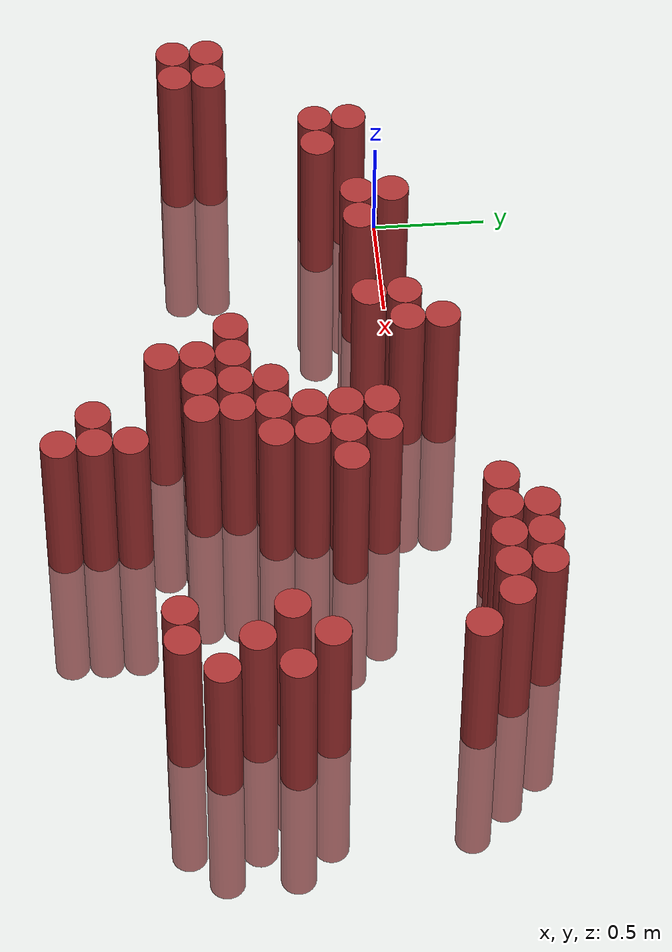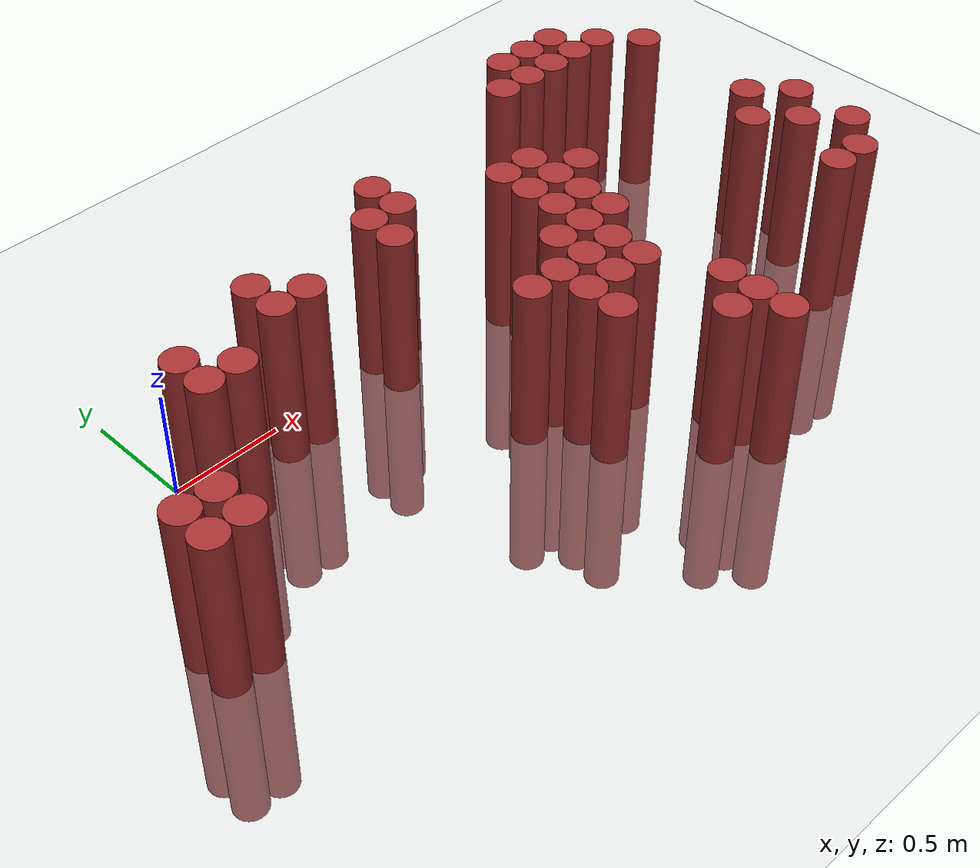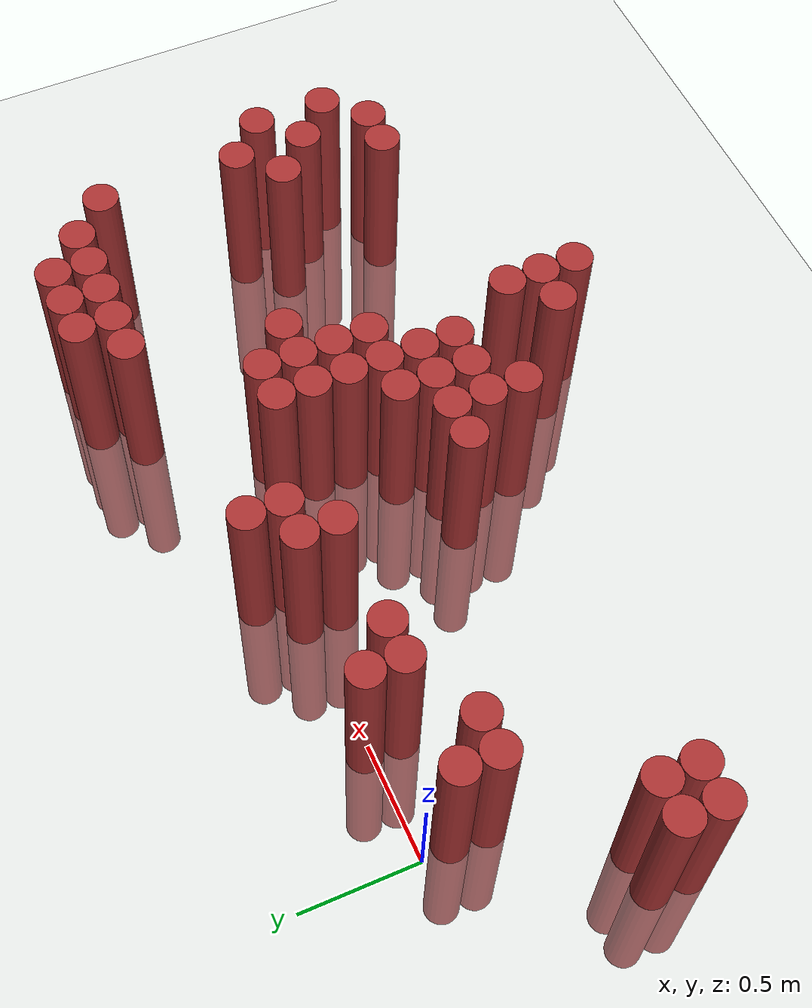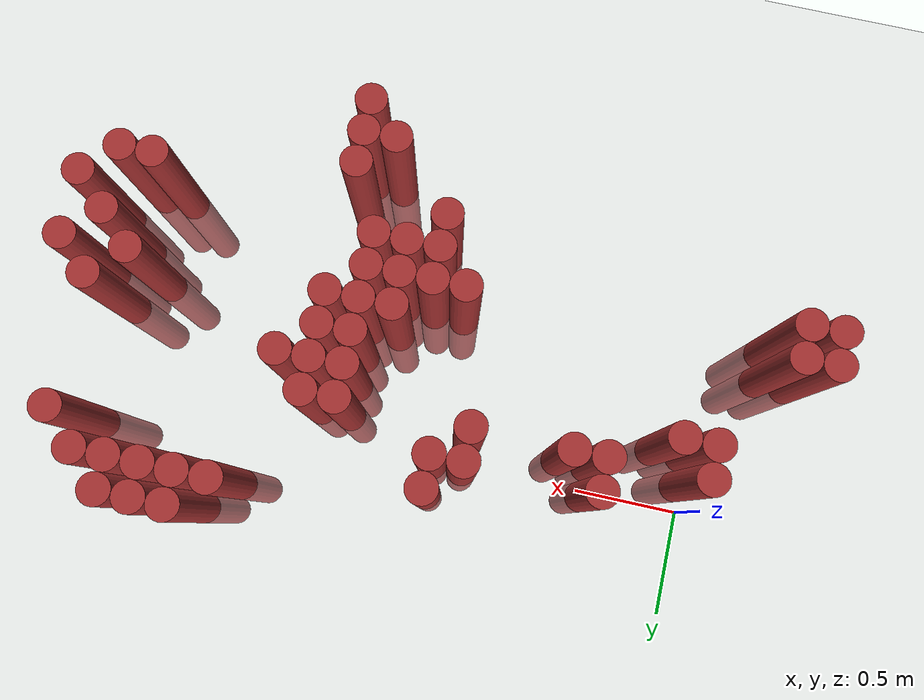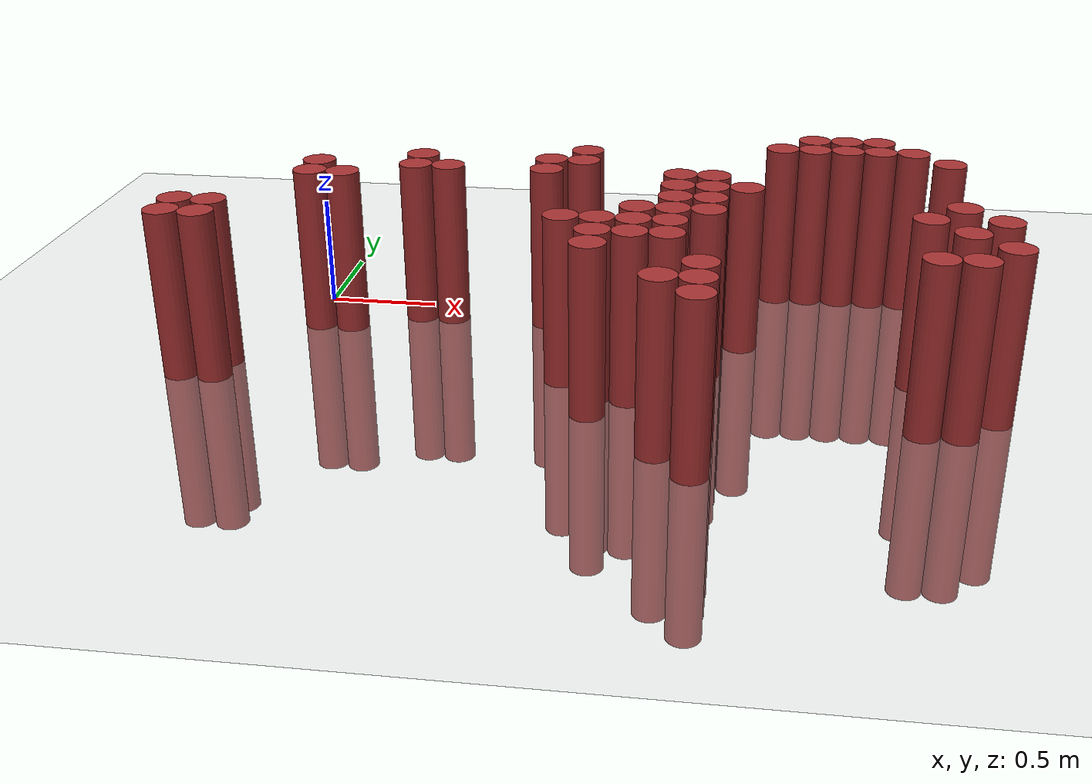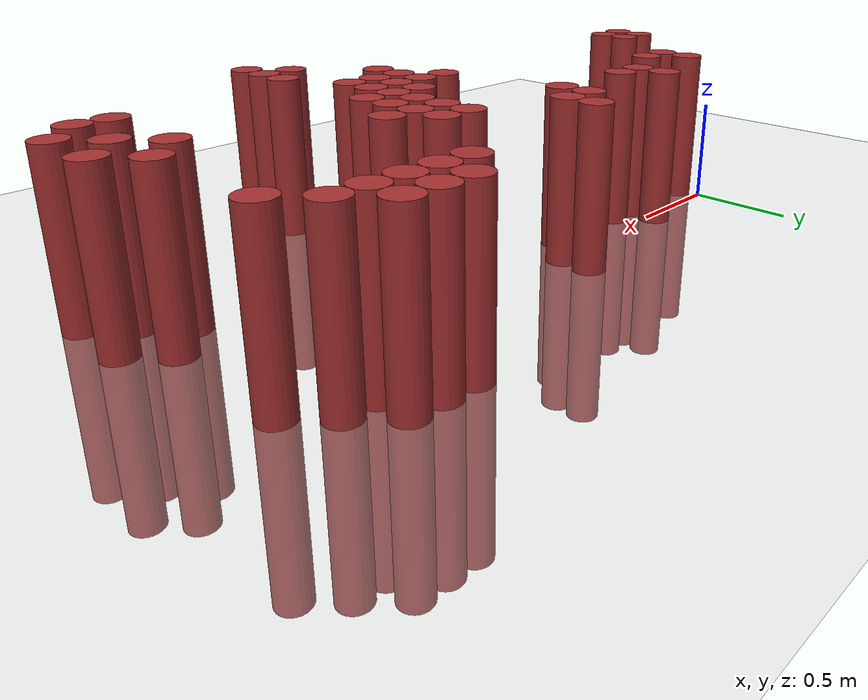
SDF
<sdf version="1.6">
 <world name="default">
  <model name="ground_plane">
   <static>1</static>
   <link name="link">
    <collision name="collision">
     <geometry><plane><normal>0 0 1</normal><size>100 100</size></plane></geometry>
     <surface><friction><ode><mu>100</mu><mu2>50</mu2></ode></friction></surface>
    </collision>
    <visual name="visual">
     <cast_shadows>0</cast_shadows>
     <geometry><plane><normal>0 0 1</normal><size>100 100</size></plane></geometry>
     <material>
      <script><uri>file://media/materials/scripts/gazebo.material</uri><name>Gazebo/Grey</name></script>
     </material>
    </visual>
   </link>
  </model>
  <model name="unit_cylinder_351">
   <static>1</static>
   <pose>-0.425000 -0.875000 0.000000 0.000000 0.000000 0.000000</pose>
   <link name="link">
    <inertial>
     <mass>1</mass>
     <inertia><ixx>0.145833</ixx><ixy>0</ixy><ixz>0</ixz><iyy>0.145833</iyy><iyz>0</iyz><izz>0.125</izz></inertia>
    </inertial>
    <collision name="collision">
     <geometry><cylinder><radius>0.075000</radius><length>1.5</length></cylinder></geometry>
    </collision>
    <visual name="visual">
     <geometry><cylinder><radius>0.075000</radius><length>1.5</length></cylinder></geometry>
     <material>
      <ambient>0.648000 0.192000 0.192000 1</ambient>
      <diffuse>0.648000 0.192000 0.192000 1</diffuse>
     </material>
     <material>
      <script><name>Gazebo/Grey</name><uri>file://media/materials/scripts/gazebo.material</uri></script>
     </material>
    </visual>
   </link>
  </model>
  <model name="unit_cylinder_352">
   <static>1</static>
   <pose>-0.425000 -0.725000 0.000000 0.000000 0.000000 0.000000</pose>
   <link name="link">
    <inertial>
     <mass>1</mass>
     <inertia><ixx>0.145833</ixx><ixy>0</ixy><ixz>0</ixz><iyy>0.145833</iyy><iyz>0</iyz><izz>0.125</izz></inertia>
    </inertial>
    <collision name="collision">
     <geometry><cylinder><radius>0.075000</radius><length>1.5</length></cylinder></geometry>
    </collision>
    <visual name="visual">
     <geometry><cylinder><radius>0.075000</radius><length>1.5</length></cylinder></geometry>
     <material>
      <ambient>0.648000 0.192000 0.192000 1</ambient>
      <diffuse>0.648000 0.192000 0.192000 1</diffuse>
     </material>
     <material>
      <script><name>Gazebo/Grey</name><uri>file://media/materials/scripts/gazebo.material</uri></script>
     </material>
    </visual>
   </link>
  </model>
  <model name="unit_cylinder_356">
   <static>1</static>
   <pose>-0.275000 -0.875000 0.000000 0.000000 0.000000 0.000000</pose>
   <link name="link">
    <inertial>
     <mass>1</mass>
     <inertia><ixx>0.145833</ixx><ixy>0</ixy><ixz>0</ixz><iyy>0.145833</iyy><iyz>0</iyz><izz>0.125</izz></inertia>
    </inertial>
    <collision name="collision">
     <geometry><cylinder><radius>0.075000</radius><length>1.5</length></cylinder></geometry>
    </collision>
    <visual name="visual">
     <geometry><cylinder><radius>0.075000</radius><length>1.5</length></cylinder></geometry>
     <material>
      <ambient>0.648000 0.192000 0.192000 1</ambient>
      <diffuse>0.648000 0.192000 0.192000 1</diffuse>
     </material>
     <material>
      <script><name>Gazebo/Grey</name><uri>file://media/materials/scripts/gazebo.material</uri></script>
     </material>
    </visual>
   </link>
  </model>
  <model name="unit_cylinder_357">
   <static>1</static>
   <pose>-0.275000 -0.725000 0.000000 0.000000 0.000000 0.000000</pose>
   <link name="link">
    <inertial>
     <mass>1</mass>
     <inertia><ixx>0.145833</ixx><ixy>0</ixy><ixz>0</ixz><iyy>0.145833</iyy><iyz>0</iyz><izz>0.125</izz></inertia>
    </inertial>
    <collision name="collision">
     <geometry><cylinder><radius>0.075000</radius><length>1.5</length></cylinder></geometry>
    </collision>
    <visual name="visual">
     <geometry><cylinder><radius>0.075000</radius><length>1.5</length></cylinder></geometry>
     <material>
      <ambient>0.648000 0.192000 0.192000 1</ambient>
      <diffuse>0.648000 0.192000 0.192000 1</diffuse>
     </material>
     <material>
      <script><name>Gazebo/Grey</name><uri>file://media/materials/scripts/gazebo.material</uri></script>
     </material>
    </visual>
   </link>
  </model>
  <model name="unit_cylinder_365">
   <static>1</static>
   <pose>0.025000 -0.275000 0.000000 0.000000 0.000000 0.000000</pose>
   <link name="link">
    <inertial>
     <mass>1</mass>
     <inertia><ixx>0.145833</ixx><ixy>0</ixy><ixz>0</ixz><iyy>0.145833</iyy><iyz>0</iyz><izz>0.125</izz></inertia>
    </inertial>
    <collision name="collision">
     <geometry><cylinder><radius>0.075000</radius><length>1.5</length></cylinder></geometry>
    </collision>
    <visual name="visual">
     <geometry><cylinder><radius>0.075000</radius><length>1.5</length></cylinder></geometry>
     <material>
      <ambient>0.648000 0.192000 0.192000 1</ambient>
      <diffuse>0.648000 0.192000 0.192000 1</diffuse>
     </material>
     <material>
      <script><name>Gazebo/Grey</name><uri>file://media/materials/scripts/gazebo.material</uri></script>
     </material>
    </visual>
   </link>
  </model>
  <model name="unit_cylinder_366">
   <static>1</static>
   <pose>0.025000 -0.125000 0.000000 0.000000 0.000000 0.000000</pose>
   <link name="link">
    <inertial>
     <mass>1</mass>
     <inertia><ixx>0.145833</ixx><ixy>0</ixy><ixz>0</ixz><iyy>0.145833</iyy><iyz>0</iyz><izz>0.125</izz></inertia>
    </inertial>
    <collision name="collision">
     <geometry><cylinder><radius>0.075000</radius><length>1.5</length></cylinder></geometry>
    </collision>
    <visual name="visual">
     <geometry><cylinder><radius>0.075000</radius><length>1.5</length></cylinder></geometry>
     <material>
      <ambient>0.648000 0.192000 0.192000 1</ambient>
      <diffuse>0.648000 0.192000 0.192000 1</diffuse>
     </material>
     <material>
      <script><name>Gazebo/Grey</name><uri>file://media/materials/scripts/gazebo.material</uri></script>
     </material>
    </visual>
   </link>
  </model>
  <model name="unit_cylinder_372">
   <static>1</static>
   <pose>0.175000 -0.275000 0.000000 0.000000 0.000000 0.000000</pose>
   <link name="link">
    <inertial>
     <mass>1</mass>
     <inertia><ixx>0.145833</ixx><ixy>0</ixy><ixz>0</ixz><iyy>0.145833</iyy><iyz>0</iyz><izz>0.125</izz></inertia>
    </inertial>
    <collision name="collision">
     <geometry><cylinder><radius>0.075000</radius><length>1.5</length></cylinder></geometry>
    </collision>
    <visual name="visual">
     <geometry><cylinder><radius>0.075000</radius><length>1.5</length></cylinder></geometry>
     <material>
      <ambient>0.648000 0.192000 0.192000 1</ambient>
      <diffuse>0.648000 0.192000 0.192000 1</diffuse>
     </material>
     <material>
      <script><name>Gazebo/Grey</name><uri>file://media/materials/scripts/gazebo.material</uri></script>
     </material>
    </visual>
   </link>
  </model>
  <model name="unit_cylinder_383">
   <static>1</static>
   <pose>0.475000 -0.125000 0.000000 0.000000 0.000000 0.000000</pose>
   <link name="link">
    <inertial>
     <mass>1</mass>
     <inertia><ixx>0.145833</ixx><ixy>0</ixy><ixz>0</ixz><iyy>0.145833</iyy><iyz>0</iyz><izz>0.125</izz></inertia>
    </inertial>
    <collision name="collision">
     <geometry><cylinder><radius>0.075000</radius><length>1.5</length></cylinder></geometry>
    </collision>
    <visual name="visual">
     <geometry><cylinder><radius>0.075000</radius><length>1.5</length></cylinder></geometry>
     <material>
      <ambient>0.648000 0.192000 0.192000 1</ambient>
      <diffuse>0.648000 0.192000 0.192000 1</diffuse>
     </material>
     <material>
      <script><name>Gazebo/Grey</name><uri>file://media/materials/scripts/gazebo.material</uri></script>
     </material>
    </visual>
   </link>
  </model>
  <model name="unit_cylinder_384">
   <static>1</static>
   <pose>0.475000 0.025000 0.000000 0.000000 0.000000 0.000000</pose>
   <link name="link">
    <inertial>
     <mass>1</mass>
     <inertia><ixx>0.145833</ixx><ixy>0</ixy><ixz>0</ixz><iyy>0.145833</iyy><iyz>0</iyz><izz>0.125</izz></inertia>
    </inertial>
    <collision name="collision">
     <geometry><cylinder><radius>0.075000</radius><length>1.5</length></cylinder></geometry>
    </collision>
    <visual name="visual">
     <geometry><cylinder><radius>0.075000</radius><length>1.5</length></cylinder></geometry>
     <material>
      <ambient>0.648000 0.192000 0.192000 1</ambient>
      <diffuse>0.648000 0.192000 0.192000 1</diffuse>
     </material>
     <material>
      <script><name>Gazebo/Grey</name><uri>file://media/materials/scripts/gazebo.material</uri></script>
     </material>
    </visual>
   </link>
  </model>
  <model name="unit_cylinder_390">
   <static>1</static>
   <pose>0.625000 -0.125000 0.000000 0.000000 0.000000 0.000000</pose>
   <link name="link">
    <inertial>
     <mass>1</mass>
     <inertia><ixx>0.145833</ixx><ixy>0</ixy><ixz>0</ixz><iyy>0.145833</iyy><iyz>0</iyz><izz>0.125</izz></inertia>
    </inertial>
    <collision name="collision">
     <geometry><cylinder><radius>0.075000</radius><length>1.5</length></cylinder></geometry>
    </collision>
    <visual name="visual">
     <geometry><cylinder><radius>0.075000</radius><length>1.5</length></cylinder></geometry>
     <material>
      <ambient>0.648000 0.192000 0.192000 1</ambient>
      <diffuse>0.648000 0.192000 0.192000 1</diffuse>
     </material>
     <material>
      <script><name>Gazebo/Grey</name><uri>file://media/materials/scripts/gazebo.material</uri></script>
     </material>
    </visual>
   </link>
  </model>
  <model name="unit_cylinder_398">
   <static>1</static>
   <pose>1.075000 -0.125000 0.000000 0.000000 0.000000 0.000000</pose>
   <link name="link">
    <inertial>
     <mass>1</mass>
     <inertia><ixx>0.145833</ixx><ixy>0</ixy><ixz>0</ixz><iyy>0.145833</iyy><iyz>0</iyz><izz>0.125</izz></inertia>
    </inertial>
    <collision name="collision">
     <geometry><cylinder><radius>0.075000</radius><length>1.5</length></cylinder></geometry>
    </collision>
    <visual name="visual">
     <geometry><cylinder><radius>0.075000</radius><length>1.5</length></cylinder></geometry>
     <material>
      <ambient>0.648000 0.192000 0.192000 1</ambient>
      <diffuse>0.648000 0.192000 0.192000 1</diffuse>
     </material>
     <material>
      <script><name>Gazebo/Grey</name><uri>file://media/materials/scripts/gazebo.material</uri></script>
     </material>
    </visual>
   </link>
  </model>
  <model name="unit_cylinder_399">
   <static>1</static>
   <pose>1.075000 0.025000 0.000000 0.000000 0.000000 0.000000</pose>
   <link name="link">
    <inertial>
     <mass>1</mass>
     <inertia><ixx>0.145833</ixx><ixy>0</ixy><ixz>0</ixz><iyy>0.145833</iyy><iyz>0</iyz><izz>0.125</izz></inertia>
    </inertial>
    <collision name="collision">
     <geometry><cylinder><radius>0.075000</radius><length>1.5</length></cylinder></geometry>
    </collision>
    <visual name="visual">
     <geometry><cylinder><radius>0.075000</radius><length>1.5</length></cylinder></geometry>
     <material>
      <ambient>0.648000 0.192000 0.192000 1</ambient>
      <diffuse>0.648000 0.192000 0.192000 1</diffuse>
     </material>
     <material>
      <script><name>Gazebo/Grey</name><uri>file://media/materials/scripts/gazebo.material</uri></script>
     </material>
    </visual>
   </link>
  </model>
  <model name="unit_cylinder_402">
   <static>1</static>
   <pose>1.225000 -0.725000 0.000000 0.000000 0.000000 0.000000</pose>
   <link name="link">
    <inertial>
     <mass>1</mass>
     <inertia><ixx>0.145833</ixx><ixy>0</ixy><ixz>0</ixz><iyy>0.145833</iyy><iyz>0</iyz><izz>0.125</izz></inertia>
    </inertial>
    <collision name="collision">
     <geometry><cylinder><radius>0.075000</radius><length>1.5</length></cylinder></geometry>
    </collision>
    <visual name="visual">
     <geometry><cylinder><radius>0.075000</radius><length>1.5</length></cylinder></geometry>
     <material>
      <ambient>0.648000 0.192000 0.192000 1</ambient>
      <diffuse>0.648000 0.192000 0.192000 1</diffuse>
     </material>
     <material>
      <script><name>Gazebo/Grey</name><uri>file://media/materials/scripts/gazebo.material</uri></script>
     </material>
    </visual>
   </link>
  </model>
  <model name="unit_cylinder_403">
   <static>1</static>
   <pose>1.225000 0.025000 0.000000 0.000000 0.000000 0.000000</pose>
   <link name="link">
    <inertial>
     <mass>1</mass>
     <inertia><ixx>0.145833</ixx><ixy>0</ixy><ixz>0</ixz><iyy>0.145833</iyy><iyz>0</iyz><izz>0.125</izz></inertia>
    </inertial>
    <collision name="collision">
     <geometry><cylinder><radius>0.075000</radius><length>1.5</length></cylinder></geometry>
    </collision>
    <visual name="visual">
     <geometry><cylinder><radius>0.075000</radius><length>1.5</length></cylinder></geometry>
     <material>
      <ambient>0.648000 0.192000 0.192000 1</ambient>
      <diffuse>0.648000 0.192000 0.192000 1</diffuse>
     </material>
     <material>
      <script><name>Gazebo/Grey</name><uri>file://media/materials/scripts/gazebo.material</uri></script>
     </material>
    </visual>
   </link>
  </model>
  <model name="unit_cylinder_404">
   <static>1</static>
   <pose>1.225000 0.175000 0.000000 0.000000 0.000000 0.000000</pose>
   <link name="link">
    <inertial>
     <mass>1</mass>
     <inertia><ixx>0.145833</ixx><ixy>0</ixy><ixz>0</ixz><iyy>0.145833</iyy><iyz>0</iyz><izz>0.125</izz></inertia>
    </inertial>
    <collision name="collision">
     <geometry><cylinder><radius>0.075000</radius><length>1.5</length></cylinder></geometry>
    </collision>
    <visual name="visual">
     <geometry><cylinder><radius>0.075000</radius><length>1.5</length></cylinder></geometry>
     <material>
      <ambient>0.648000 0.192000 0.192000 1</ambient>
      <diffuse>0.648000 0.192000 0.192000 1</diffuse>
     </material>
     <material>
      <script><name>Gazebo/Grey</name><uri>file://media/materials/scripts/gazebo.material</uri></script>
     </material>
    </visual>
   </link>
  </model>
  <model name="unit_cylinder_405">
   <static>1</static>
   <pose>1.375000 -1.025000 0.000000 0.000000 0.000000 0.000000</pose>
   <link name="link">
    <inertial>
     <mass>1</mass>
     <inertia><ixx>0.145833</ixx><ixy>0</ixy><ixz>0</ixz><iyy>0.145833</iyy><iyz>0</iyz><izz>0.125</izz></inertia>
    </inertial>
    <collision name="collision">
     <geometry><cylinder><radius>0.075000</radius><length>1.5</length></cylinder></geometry>
    </collision>
    <visual name="visual">
     <geometry><cylinder><radius>0.075000</radius><length>1.5</length></cylinder></geometry>
     <material>
      <ambient>0.648000 0.192000 0.192000 1</ambient>
      <diffuse>0.648000 0.192000 0.192000 1</diffuse>
     </material>
     <material>
      <script><name>Gazebo/Grey</name><uri>file://media/materials/scripts/gazebo.material</uri></script>
     </material>
    </visual>
   </link>
  </model>
  <model name="unit_cylinder_406">
   <static>1</static>
   <pose>1.375000 -0.875000 0.000000 0.000000 0.000000 0.000000</pose>
   <link name="link">
    <inertial>
     <mass>1</mass>
     <inertia><ixx>0.145833</ixx><ixy>0</ixy><ixz>0</ixz><iyy>0.145833</iyy><iyz>0</iyz><izz>0.125</izz></inertia>
    </inertial>
    <collision name="collision">
     <geometry><cylinder><radius>0.075000</radius><length>1.5</length></cylinder></geometry>
    </collision>
    <visual name="visual">
     <geometry><cylinder><radius>0.075000</radius><length>1.5</length></cylinder></geometry>
     <material>
      <ambient>0.648000 0.192000 0.192000 1</ambient>
      <diffuse>0.648000 0.192000 0.192000 1</diffuse>
     </material>
     <material>
      <script><name>Gazebo/Grey</name><uri>file://media/materials/scripts/gazebo.material</uri></script>
     </material>
    </visual>
   </link>
  </model>
  <model name="unit_cylinder_407">
   <static>1</static>
   <pose>1.375000 -0.725000 0.000000 0.000000 0.000000 0.000000</pose>
   <link name="link">
    <inertial>
     <mass>1</mass>
     <inertia><ixx>0.145833</ixx><ixy>0</ixy><ixz>0</ixz><iyy>0.145833</iyy><iyz>0</iyz><izz>0.125</izz></inertia>
    </inertial>
    <collision name="collision">
     <geometry><cylinder><radius>0.075000</radius><length>1.5</length></cylinder></geometry>
    </collision>
    <visual name="visual">
     <geometry><cylinder><radius>0.075000</radius><length>1.5</length></cylinder></geometry>
     <material>
      <ambient>0.648000 0.192000 0.192000 1</ambient>
      <diffuse>0.648000 0.192000 0.192000 1</diffuse>
     </material>
     <material>
      <script><name>Gazebo/Grey</name><uri>file://media/materials/scripts/gazebo.material</uri></script>
     </material>
    </visual>
   </link>
  </model>
  <model name="unit_cylinder_410">
   <static>1</static>
   <pose>1.525000 -0.875000 0.000000 0.000000 0.000000 0.000000</pose>
   <link name="link">
    <inertial>
     <mass>1</mass>
     <inertia><ixx>0.145833</ixx><ixy>0</ixy><ixz>0</ixz><iyy>0.145833</iyy><iyz>0</iyz><izz>0.125</izz></inertia>
    </inertial>
    <collision name="collision">
     <geometry><cylinder><radius>0.075000</radius><length>1.5</length></cylinder></geometry>
    </collision>
    <visual name="visual">
     <geometry><cylinder><radius>0.075000</radius><length>1.5</length></cylinder></geometry>
     <material>
      <ambient>0.648000 0.192000 0.192000 1</ambient>
      <diffuse>0.648000 0.192000 0.192000 1</diffuse>
     </material>
     <material>
      <script><name>Gazebo/Grey</name><uri>file://media/materials/scripts/gazebo.material</uri></script>
     </material>
    </visual>
   </link>
  </model>
  <model name="unit_cylinder_411">
   <static>1</static>
   <pose>1.525000 -0.725000 0.000000 0.000000 0.000000 0.000000</pose>
   <link name="link">
    <inertial>
     <mass>1</mass>
     <inertia><ixx>0.145833</ixx><ixy>0</ixy><ixz>0</ixz><iyy>0.145833</iyy><iyz>0</iyz><izz>0.125</izz></inertia>
    </inertial>
    <collision name="collision">
     <geometry><cylinder><radius>0.075000</radius><length>1.5</length></cylinder></geometry>
    </collision>
    <visual name="visual">
     <geometry><cylinder><radius>0.075000</radius><length>1.5</length></cylinder></geometry>
     <material>
      <ambient>0.648000 0.192000 0.192000 1</ambient>
      <diffuse>0.648000 0.192000 0.192000 1</diffuse>
     </material>
     <material>
      <script><name>Gazebo/Grey</name><uri>file://media/materials/scripts/gazebo.material</uri></script>
     </material>
    </visual>
   </link>
  </model>
  <model name="unit_cylinder_412">
   <static>1</static>
   <pose>1.525000 -0.575000 0.000000 0.000000 0.000000 0.000000</pose>
   <link name="link">
    <inertial>
     <mass>1</mass>
     <inertia><ixx>0.145833</ixx><ixy>0</ixy><ixz>0</ixz><iyy>0.145833</iyy><iyz>0</iyz><izz>0.125</izz></inertia>
    </inertial>
    <collision name="collision">
     <geometry><cylinder><radius>0.075000</radius><length>1.5</length></cylinder></geometry>
    </collision>
    <visual name="visual">
     <geometry><cylinder><radius>0.075000</radius><length>1.5</length></cylinder></geometry>
     <material>
      <ambient>0.648000 0.192000 0.192000 1</ambient>
      <diffuse>0.648000 0.192000 0.192000 1</diffuse>
     </material>
     <material>
      <script><name>Gazebo/Grey</name><uri>file://media/materials/scripts/gazebo.material</uri></script>
     </material>
    </visual>
   </link>
  </model>
  <model name="unit_cylinder_417">
   <static>1</static>
   <pose>1.675000 -1.325000 0.000000 0.000000 0.000000 0.000000</pose>
   <link name="link">
    <inertial>
     <mass>1</mass>
     <inertia><ixx>0.145833</ixx><ixy>0</ixy><ixz>0</ixz><iyy>0.145833</iyy><iyz>0</iyz><izz>0.125</izz></inertia>
    </inertial>
    <collision name="collision">
     <geometry><cylinder><radius>0.075000</radius><length>1.5</length></cylinder></geometry>
    </collision>
    <visual name="visual">
     <geometry><cylinder><radius>0.075000</radius><length>1.5</length></cylinder></geometry>
     <material>
      <ambient>0.648000 0.192000 0.192000 1</ambient>
      <diffuse>0.648000 0.192000 0.192000 1</diffuse>
     </material>
     <material>
      <script><name>Gazebo/Grey</name><uri>file://media/materials/scripts/gazebo.material</uri></script>
     </material>
    </visual>
   </link>
  </model>
  <model name="unit_cylinder_418">
   <static>1</static>
   <pose>1.675000 -0.875000 0.000000 0.000000 0.000000 0.000000</pose>
   <link name="link">
    <inertial>
     <mass>1</mass>
     <inertia><ixx>0.145833</ixx><ixy>0</ixy><ixz>0</ixz><iyy>0.145833</iyy><iyz>0</iyz><izz>0.125</izz></inertia>
    </inertial>
    <collision name="collision">
     <geometry><cylinder><radius>0.075000</radius><length>1.5</length></cylinder></geometry>
    </collision>
    <visual name="visual">
     <geometry><cylinder><radius>0.075000</radius><length>1.5</length></cylinder></geometry>
     <material>
      <ambient>0.648000 0.192000 0.192000 1</ambient>
      <diffuse>0.648000 0.192000 0.192000 1</diffuse>
     </material>
     <material>
      <script><name>Gazebo/Grey</name><uri>file://media/materials/scripts/gazebo.material</uri></script>
     </material>
    </visual>
   </link>
  </model>
  <model name="unit_cylinder_419">
   <static>1</static>
   <pose>1.675000 -0.725000 0.000000 0.000000 0.000000 0.000000</pose>
   <link name="link">
    <inertial>
     <mass>1</mass>
     <inertia><ixx>0.145833</ixx><ixy>0</ixy><ixz>0</ixz><iyy>0.145833</iyy><iyz>0</iyz><izz>0.125</izz></inertia>
    </inertial>
    <collision name="collision">
     <geometry><cylinder><radius>0.075000</radius><length>1.5</length></cylinder></geometry>
    </collision>
    <visual name="visual">
     <geometry><cylinder><radius>0.075000</radius><length>1.5</length></cylinder></geometry>
     <material>
      <ambient>0.648000 0.192000 0.192000 1</ambient>
      <diffuse>0.648000 0.192000 0.192000 1</diffuse>
     </material>
     <material>
      <script><name>Gazebo/Grey</name><uri>file://media/materials/scripts/gazebo.material</uri></script>
     </material>
    </visual>
   </link>
  </model>
  <model name="unit_cylinder_420">
   <static>1</static>
   <pose>1.675000 -0.575000 0.000000 0.000000 0.000000 0.000000</pose>
   <link name="link">
    <inertial>
     <mass>1</mass>
     <inertia><ixx>0.145833</ixx><ixy>0</ixy><ixz>0</ixz><iyy>0.145833</iyy><iyz>0</iyz><izz>0.125</izz></inertia>
    </inertial>
    <collision name="collision">
     <geometry><cylinder><radius>0.075000</radius><length>1.5</length></cylinder></geometry>
    </collision>
    <visual name="visual">
     <geometry><cylinder><radius>0.075000</radius><length>1.5</length></cylinder></geometry>
     <material>
      <ambient>0.648000 0.192000 0.192000 1</ambient>
      <diffuse>0.648000 0.192000 0.192000 1</diffuse>
     </material>
     <material>
      <script><name>Gazebo/Grey</name><uri>file://media/materials/scripts/gazebo.material</uri></script>
     </material>
    </visual>
   </link>
  </model>
  <model name="unit_cylinder_421">
   <static>1</static>
   <pose>1.675000 -0.425000 0.000000 0.000000 0.000000 0.000000</pose>
   <link name="link">
    <inertial>
     <mass>1</mass>
     <inertia><ixx>0.145833</ixx><ixy>0</ixy><ixz>0</ixz><iyy>0.145833</iyy><iyz>0</iyz><izz>0.125</izz></inertia>
    </inertial>
    <collision name="collision">
     <geometry><cylinder><radius>0.075000</radius><length>1.5</length></cylinder></geometry>
    </collision>
    <visual name="visual">
     <geometry><cylinder><radius>0.075000</radius><length>1.5</length></cylinder></geometry>
     <material>
      <ambient>0.648000 0.192000 0.192000 1</ambient>
      <diffuse>0.648000 0.192000 0.192000 1</diffuse>
     </material>
     <material>
      <script><name>Gazebo/Grey</name><uri>file://media/materials/scripts/gazebo.material</uri></script>
     </material>
    </visual>
   </link>
  </model>
  <model name="unit_cylinder_422">
   <static>1</static>
   <pose>1.675000 -0.275000 0.000000 0.000000 0.000000 0.000000</pose>
   <link name="link">
    <inertial>
     <mass>1</mass>
     <inertia><ixx>0.145833</ixx><ixy>0</ixy><ixz>0</ixz><iyy>0.145833</iyy><iyz>0</iyz><izz>0.125</izz></inertia>
    </inertial>
    <collision name="collision">
     <geometry><cylinder><radius>0.075000</radius><length>1.5</length></cylinder></geometry>
    </collision>
    <visual name="visual">
     <geometry><cylinder><radius>0.075000</radius><length>1.5</length></cylinder></geometry>
     <material>
      <ambient>0.648000 0.192000 0.192000 1</ambient>
      <diffuse>0.648000 0.192000 0.192000 1</diffuse>
     </material>
     <material>
      <script><name>Gazebo/Grey</name><uri>file://media/materials/scripts/gazebo.material</uri></script>
     </material>
    </visual>
   </link>
  </model>
  <model name="unit_cylinder_423">
   <static>1</static>
   <pose>1.675000 -0.125000 0.000000 0.000000 0.000000 0.000000</pose>
   <link name="link">
    <inertial>
     <mass>1</mass>
     <inertia><ixx>0.145833</ixx><ixy>0</ixy><ixz>0</ixz><iyy>0.145833</iyy><iyz>0</iyz><izz>0.125</izz></inertia>
    </inertial>
    <collision name="collision">
     <geometry><cylinder><radius>0.075000</radius><length>1.5</length></cylinder></geometry>
    </collision>
    <visual name="visual">
     <geometry><cylinder><radius>0.075000</radius><length>1.5</length></cylinder></geometry>
     <material>
      <ambient>0.648000 0.192000 0.192000 1</ambient>
      <diffuse>0.648000 0.192000 0.192000 1</diffuse>
     </material>
     <material>
      <script><name>Gazebo/Grey</name><uri>file://media/materials/scripts/gazebo.material</uri></script>
     </material>
    </visual>
   </link>
  </model>
  <model name="unit_cylinder_430">
   <static>1</static>
   <pose>1.825000 -1.475000 0.000000 0.000000 0.000000 0.000000</pose>
   <link name="link">
    <inertial>
     <mass>1</mass>
     <inertia><ixx>0.145833</ixx><ixy>0</ixy><ixz>0</ixz><iyy>0.145833</iyy><iyz>0</iyz><izz>0.125</izz></inertia>
    </inertial>
    <collision name="collision">
     <geometry><cylinder><radius>0.075000</radius><length>1.5</length></cylinder></geometry>
    </collision>
    <visual name="visual">
     <geometry><cylinder><radius>0.075000</radius><length>1.5</length></cylinder></geometry>
     <material>
      <ambient>0.648000 0.192000 0.192000 1</ambient>
      <diffuse>0.648000 0.192000 0.192000 1</diffuse>
     </material>
     <material>
      <script><name>Gazebo/Grey</name><uri>file://media/materials/scripts/gazebo.material</uri></script>
     </material>
    </visual>
   </link>
  </model>
  <model name="unit_cylinder_431">
   <static>1</static>
   <pose>1.825000 -1.325000 0.000000 0.000000 0.000000 0.000000</pose>
   <link name="link">
    <inertial>
     <mass>1</mass>
     <inertia><ixx>0.145833</ixx><ixy>0</ixy><ixz>0</ixz><iyy>0.145833</iyy><iyz>0</iyz><izz>0.125</izz></inertia>
    </inertial>
    <collision name="collision">
     <geometry><cylinder><radius>0.075000</radius><length>1.5</length></cylinder></geometry>
    </collision>
    <visual name="visual">
     <geometry><cylinder><radius>0.075000</radius><length>1.5</length></cylinder></geometry>
     <material>
      <ambient>0.648000 0.192000 0.192000 1</ambient>
      <diffuse>0.648000 0.192000 0.192000 1</diffuse>
     </material>
     <material>
      <script><name>Gazebo/Grey</name><uri>file://media/materials/scripts/gazebo.material</uri></script>
     </material>
    </visual>
   </link>
  </model>
  <model name="unit_cylinder_432">
   <static>1</static>
   <pose>1.825000 -1.175000 0.000000 0.000000 0.000000 0.000000</pose>
   <link name="link">
    <inertial>
     <mass>1</mass>
     <inertia><ixx>0.145833</ixx><ixy>0</ixy><ixz>0</ixz><iyy>0.145833</iyy><iyz>0</iyz><izz>0.125</izz></inertia>
    </inertial>
    <collision name="collision">
     <geometry><cylinder><radius>0.075000</radius><length>1.5</length></cylinder></geometry>
    </collision>
    <visual name="visual">
     <geometry><cylinder><radius>0.075000</radius><length>1.5</length></cylinder></geometry>
     <material>
      <ambient>0.648000 0.192000 0.192000 1</ambient>
      <diffuse>0.648000 0.192000 0.192000 1</diffuse>
     </material>
     <material>
      <script><name>Gazebo/Grey</name><uri>file://media/materials/scripts/gazebo.material</uri></script>
     </material>
    </visual>
   </link>
  </model>
  <model name="unit_cylinder_433">
   <static>1</static>
   <pose>1.825000 -0.575000 0.000000 0.000000 0.000000 0.000000</pose>
   <link name="link">
    <inertial>
     <mass>1</mass>
     <inertia><ixx>0.145833</ixx><ixy>0</ixy><ixz>0</ixz><iyy>0.145833</iyy><iyz>0</iyz><izz>0.125</izz></inertia>
    </inertial>
    <collision name="collision">
     <geometry><cylinder><radius>0.075000</radius><length>1.5</length></cylinder></geometry>
    </collision>
    <visual name="visual">
     <geometry><cylinder><radius>0.075000</radius><length>1.5</length></cylinder></geometry>
     <material>
      <ambient>0.648000 0.192000 0.192000 1</ambient>
      <diffuse>0.648000 0.192000 0.192000 1</diffuse>
     </material>
     <material>
      <script><name>Gazebo/Grey</name><uri>file://media/materials/scripts/gazebo.material</uri></script>
     </material>
    </visual>
   </link>
  </model>
  <model name="unit_cylinder_434">
   <static>1</static>
   <pose>1.825000 -0.425000 0.000000 0.000000 0.000000 0.000000</pose>
   <link name="link">
    <inertial>
     <mass>1</mass>
     <inertia><ixx>0.145833</ixx><ixy>0</ixy><ixz>0</ixz><iyy>0.145833</iyy><iyz>0</iyz><izz>0.125</izz></inertia>
    </inertial>
    <collision name="collision">
     <geometry><cylinder><radius>0.075000</radius><length>1.5</length></cylinder></geometry>
    </collision>
    <visual name="visual">
     <geometry><cylinder><radius>0.075000</radius><length>1.5</length></cylinder></geometry>
     <material>
      <ambient>0.648000 0.192000 0.192000 1</ambient>
      <diffuse>0.648000 0.192000 0.192000 1</diffuse>
     </material>
     <material>
      <script><name>Gazebo/Grey</name><uri>file://media/materials/scripts/gazebo.material</uri></script>
     </material>
    </visual>
   </link>
  </model>
  <model name="unit_cylinder_435">
   <static>1</static>
   <pose>1.825000 -0.275000 0.000000 0.000000 0.000000 0.000000</pose>
   <link name="link">
    <inertial>
     <mass>1</mass>
     <inertia><ixx>0.145833</ixx><ixy>0</ixy><ixz>0</ixz><iyy>0.145833</iyy><iyz>0</iyz><izz>0.125</izz></inertia>
    </inertial>
    <collision name="collision">
     <geometry><cylinder><radius>0.075000</radius><length>1.5</length></cylinder></geometry>
    </collision>
    <visual name="visual">
     <geometry><cylinder><radius>0.075000</radius><length>1.5</length></cylinder></geometry>
     <material>
      <ambient>0.648000 0.192000 0.192000 1</ambient>
      <diffuse>0.648000 0.192000 0.192000 1</diffuse>
     </material>
     <material>
      <script><name>Gazebo/Grey</name><uri>file://media/materials/scripts/gazebo.material</uri></script>
     </material>
    </visual>
   </link>
  </model>
  <model name="unit_cylinder_436">
   <static>1</static>
   <pose>1.825000 -0.125000 0.000000 0.000000 0.000000 0.000000</pose>
   <link name="link">
    <inertial>
     <mass>1</mass>
     <inertia><ixx>0.145833</ixx><ixy>0</ixy><ixz>0</ixz><iyy>0.145833</iyy><iyz>0</iyz><izz>0.125</izz></inertia>
    </inertial>
    <collision name="collision">
     <geometry><cylinder><radius>0.075000</radius><length>1.5</length></cylinder></geometry>
    </collision>
    <visual name="visual">
     <geometry><cylinder><radius>0.075000</radius><length>1.5</length></cylinder></geometry>
     <material>
      <ambient>0.648000 0.192000 0.192000 1</ambient>
      <diffuse>0.648000 0.192000 0.192000 1</diffuse>
     </material>
     <material>
      <script><name>Gazebo/Grey</name><uri>file://media/materials/scripts/gazebo.material</uri></script>
     </material>
    </visual>
   </link>
  </model>
  <model name="unit_cylinder_445">
   <static>1</static>
   <pose>1.975000 -0.275000 0.000000 0.000000 0.000000 0.000000</pose>
   <link name="link">
    <inertial>
     <mass>1</mass>
     <inertia><ixx>0.145833</ixx><ixy>0</ixy><ixz>0</ixz><iyy>0.145833</iyy><iyz>0</iyz><izz>0.125</izz></inertia>
    </inertial>
    <collision name="collision">
     <geometry><cylinder><radius>0.075000</radius><length>1.5</length></cylinder></geometry>
    </collision>
    <visual name="visual">
     <geometry><cylinder><radius>0.075000</radius><length>1.5</length></cylinder></geometry>
     <material>
      <ambient>0.648000 0.192000 0.192000 1</ambient>
      <diffuse>0.648000 0.192000 0.192000 1</diffuse>
     </material>
     <material>
      <script><name>Gazebo/Grey</name><uri>file://media/materials/scripts/gazebo.material</uri></script>
     </material>
    </visual>
   </link>
  </model>
  <model name="unit_cylinder_451">
   <static>1</static>
   <pose>2.125000 0.325000 0.000000 0.000000 0.000000 0.000000</pose>
   <link name="link">
    <inertial>
     <mass>1</mass>
     <inertia><ixx>0.145833</ixx><ixy>0</ixy><ixz>0</ixz><iyy>0.145833</iyy><iyz>0</iyz><izz>0.125</izz></inertia>
    </inertial>
    <collision name="collision">
     <geometry><cylinder><radius>0.075000</radius><length>1.5</length></cylinder></geometry>
    </collision>
    <visual name="visual">
     <geometry><cylinder><radius>0.075000</radius><length>1.5</length></cylinder></geometry>
     <material>
      <ambient>0.648000 0.192000 0.192000 1</ambient>
      <diffuse>0.648000 0.192000 0.192000 1</diffuse>
     </material>
     <material>
      <script><name>Gazebo/Grey</name><uri>file://media/materials/scripts/gazebo.material</uri></script>
     </material>
    </visual>
   </link>
  </model>
  <model name="unit_cylinder_460">
   <static>1</static>
   <pose>2.275000 0.325000 0.000000 0.000000 0.000000 0.000000</pose>
   <link name="link">
    <inertial>
     <mass>1</mass>
     <inertia><ixx>0.145833</ixx><ixy>0</ixy><ixz>0</ixz><iyy>0.145833</iyy><iyz>0</iyz><izz>0.125</izz></inertia>
    </inertial>
    <collision name="collision">
     <geometry><cylinder><radius>0.075000</radius><length>1.5</length></cylinder></geometry>
    </collision>
    <visual name="visual">
     <geometry><cylinder><radius>0.075000</radius><length>1.5</length></cylinder></geometry>
     <material>
      <ambient>0.648000 0.192000 0.192000 1</ambient>
      <diffuse>0.648000 0.192000 0.192000 1</diffuse>
     </material>
     <material>
      <script><name>Gazebo/Grey</name><uri>file://media/materials/scripts/gazebo.material</uri></script>
     </material>
    </visual>
   </link>
  </model>
  <model name="unit_cylinder_461">
   <static>1</static>
   <pose>2.275000 0.475000 0.000000 0.000000 0.000000 0.000000</pose>
   <link name="link">
    <inertial>
     <mass>1</mass>
     <inertia><ixx>0.145833</ixx><ixy>0</ixy><ixz>0</ixz><iyy>0.145833</iyy><iyz>0</iyz><izz>0.125</izz></inertia>
    </inertial>
    <collision name="collision">
     <geometry><cylinder><radius>0.075000</radius><length>1.5</length></cylinder></geometry>
    </collision>
    <visual name="visual">
     <geometry><cylinder><radius>0.075000</radius><length>1.5</length></cylinder></geometry>
     <material>
      <ambient>0.648000 0.192000 0.192000 1</ambient>
      <diffuse>0.648000 0.192000 0.192000 1</diffuse>
     </material>
     <material>
      <script><name>Gazebo/Grey</name><uri>file://media/materials/scripts/gazebo.material</uri></script>
     </material>
    </visual>
   </link>
  </model>
  <model name="unit_cylinder_470">
   <static>1</static>
   <pose>2.425000 0.325000 0.000000 0.000000 0.000000 0.000000</pose>
   <link name="link">
    <inertial>
     <mass>1</mass>
     <inertia><ixx>0.145833</ixx><ixy>0</ixy><ixz>0</ixz><iyy>0.145833</iyy><iyz>0</iyz><izz>0.125</izz></inertia>
    </inertial>
    <collision name="collision">
     <geometry><cylinder><radius>0.075000</radius><length>1.5</length></cylinder></geometry>
    </collision>
    <visual name="visual">
     <geometry><cylinder><radius>0.075000</radius><length>1.5</length></cylinder></geometry>
     <material>
      <ambient>0.648000 0.192000 0.192000 1</ambient>
      <diffuse>0.648000 0.192000 0.192000 1</diffuse>
     </material>
     <material>
      <script><name>Gazebo/Grey</name><uri>file://media/materials/scripts/gazebo.material</uri></script>
     </material>
    </visual>
   </link>
  </model>
  <model name="unit_cylinder_471">
   <static>1</static>
   <pose>2.425000 0.475000 0.000000 0.000000 0.000000 0.000000</pose>
   <link name="link">
    <inertial>
     <mass>1</mass>
     <inertia><ixx>0.145833</ixx><ixy>0</ixy><ixz>0</ixz><iyy>0.145833</iyy><iyz>0</iyz><izz>0.125</izz></inertia>
    </inertial>
    <collision name="collision">
     <geometry><cylinder><radius>0.075000</radius><length>1.5</length></cylinder></geometry>
    </collision>
    <visual name="visual">
     <geometry><cylinder><radius>0.075000</radius><length>1.5</length></cylinder></geometry>
     <material>
      <ambient>0.648000 0.192000 0.192000 1</ambient>
      <diffuse>0.648000 0.192000 0.192000 1</diffuse>
     </material>
     <material>
      <script><name>Gazebo/Grey</name><uri>file://media/materials/scripts/gazebo.material</uri></script>
     </material>
    </visual>
   </link>
  </model>
  <model name="unit_cylinder_474">
   <static>1</static>
   <pose>2.575000 0.325000 0.000000 0.000000 0.000000 0.000000</pose>
   <link name="link">
    <inertial>
     <mass>1</mass>
     <inertia><ixx>0.145833</ixx><ixy>0</ixy><ixz>0</ixz><iyy>0.145833</iyy><iyz>0</iyz><izz>0.125</izz></inertia>
    </inertial>
    <collision name="collision">
     <geometry><cylinder><radius>0.075000</radius><length>1.5</length></cylinder></geometry>
    </collision>
    <visual name="visual">
     <geometry><cylinder><radius>0.075000</radius><length>1.5</length></cylinder></geometry>
     <material>
      <ambient>0.648000 0.192000 0.192000 1</ambient>
      <diffuse>0.648000 0.192000 0.192000 1</diffuse>
     </material>
     <material>
      <script><name>Gazebo/Grey</name><uri>file://media/materials/scripts/gazebo.material</uri></script>
     </material>
    </visual>
   </link>
  </model>
  <model name="unit_cylinder_475">
   <static>1</static>
   <pose>2.575000 0.475000 0.000000 0.000000 0.000000 0.000000</pose>
   <link name="link">
    <inertial>
     <mass>1</mass>
     <inertia><ixx>0.145833</ixx><ixy>0</ixy><ixz>0</ixz><iyy>0.145833</iyy><iyz>0</iyz><izz>0.125</izz></inertia>
    </inertial>
    <collision name="collision">
     <geometry><cylinder><radius>0.075000</radius><length>1.5</length></cylinder></geometry>
    </collision>
    <visual name="visual">
     <geometry><cylinder><radius>0.075000</radius><length>1.5</length></cylinder></geometry>
     <material>
      <ambient>0.648000 0.192000 0.192000 1</ambient>
      <diffuse>0.648000 0.192000 0.192000 1</diffuse>
     </material>
     <material>
      <script><name>Gazebo/Grey</name><uri>file://media/materials/scripts/gazebo.material</uri></script>
     </material>
    </visual>
   </link>
  </model>
  <model name="unit_cylinder_478">
   <static>1</static>
   <pose>2.725000 -1.025000 0.000000 0.000000 0.000000 0.000000</pose>
   <link name="link">
    <inertial>
     <mass>1</mass>
     <inertia><ixx>0.145833</ixx><ixy>0</ixy><ixz>0</ixz><iyy>0.145833</iyy><iyz>0</iyz><izz>0.125</izz></inertia>
    </inertial>
    <collision name="collision">
     <geometry><cylinder><radius>0.075000</radius><length>1.5</length></cylinder></geometry>
    </collision>
    <visual name="visual">
     <geometry><cylinder><radius>0.075000</radius><length>1.5</length></cylinder></geometry>
     <material>
      <ambient>0.648000 0.192000 0.192000 1</ambient>
      <diffuse>0.648000 0.192000 0.192000 1</diffuse>
     </material>
     <material>
      <script><name>Gazebo/Grey</name><uri>file://media/materials/scripts/gazebo.material</uri></script>
     </material>
    </visual>
   </link>
  </model>
  <model name="unit_cylinder_479">
   <static>1</static>
   <pose>2.725000 -0.575000 0.000000 0.000000 0.000000 0.000000</pose>
   <link name="link">
    <inertial>
     <mass>1</mass>
     <inertia><ixx>0.145833</ixx><ixy>0</ixy><ixz>0</ixz><iyy>0.145833</iyy><iyz>0</iyz><izz>0.125</izz></inertia>
    </inertial>
    <collision name="collision">
     <geometry><cylinder><radius>0.075000</radius><length>1.5</length></cylinder></geometry>
    </collision>
    <visual name="visual">
     <geometry><cylinder><radius>0.075000</radius><length>1.5</length></cylinder></geometry>
     <material>
      <ambient>0.648000 0.192000 0.192000 1</ambient>
      <diffuse>0.648000 0.192000 0.192000 1</diffuse>
     </material>
     <material>
      <script><name>Gazebo/Grey</name><uri>file://media/materials/scripts/gazebo.material</uri></script>
     </material>
    </visual>
   </link>
  </model>
  <model name="unit_cylinder_480">
   <static>1</static>
   <pose>2.725000 0.325000 0.000000 0.000000 0.000000 0.000000</pose>
   <link name="link">
    <inertial>
     <mass>1</mass>
     <inertia><ixx>0.145833</ixx><ixy>0</ixy><ixz>0</ixz><iyy>0.145833</iyy><iyz>0</iyz><izz>0.125</izz></inertia>
    </inertial>
    <collision name="collision">
     <geometry><cylinder><radius>0.075000</radius><length>1.5</length></cylinder></geometry>
    </collision>
    <visual name="visual">
     <geometry><cylinder><radius>0.075000</radius><length>1.5</length></cylinder></geometry>
     <material>
      <ambient>0.648000 0.192000 0.192000 1</ambient>
      <diffuse>0.648000 0.192000 0.192000 1</diffuse>
     </material>
     <material>
      <script><name>Gazebo/Grey</name><uri>file://media/materials/scripts/gazebo.material</uri></script>
     </material>
    </visual>
   </link>
  </model>
  <model name="unit_cylinder_481">
   <static>1</static>
   <pose>2.875000 -1.025000 0.000000 0.000000 0.000000 0.000000</pose>
   <link name="link">
    <inertial>
     <mass>1</mass>
     <inertia><ixx>0.145833</ixx><ixy>0</ixy><ixz>0</ixz><iyy>0.145833</iyy><iyz>0</iyz><izz>0.125</izz></inertia>
    </inertial>
    <collision name="collision">
     <geometry><cylinder><radius>0.075000</radius><length>1.5</length></cylinder></geometry>
    </collision>
    <visual name="visual">
     <geometry><cylinder><radius>0.075000</radius><length>1.5</length></cylinder></geometry>
     <material>
      <ambient>0.648000 0.192000 0.192000 1</ambient>
      <diffuse>0.648000 0.192000 0.192000 1</diffuse>
     </material>
     <material>
      <script><name>Gazebo/Grey</name><uri>file://media/materials/scripts/gazebo.material</uri></script>
     </material>
    </visual>
   </link>
  </model>
  <model name="unit_cylinder_482">
   <static>1</static>
   <pose>2.875000 -0.725000 0.000000 0.000000 0.000000 0.000000</pose>
   <link name="link">
    <inertial>
     <mass>1</mass>
     <inertia><ixx>0.145833</ixx><ixy>0</ixy><ixz>0</ixz><iyy>0.145833</iyy><iyz>0</iyz><izz>0.125</izz></inertia>
    </inertial>
    <collision name="collision">
     <geometry><cylinder><radius>0.075000</radius><length>1.5</length></cylinder></geometry>
    </collision>
    <visual name="visual">
     <geometry><cylinder><radius>0.075000</radius><length>1.5</length></cylinder></geometry>
     <material>
      <ambient>0.648000 0.192000 0.192000 1</ambient>
      <diffuse>0.648000 0.192000 0.192000 1</diffuse>
     </material>
     <material>
      <script><name>Gazebo/Grey</name><uri>file://media/materials/scripts/gazebo.material</uri></script>
     </material>
    </visual>
   </link>
  </model>
  <model name="unit_cylinder_483">
   <static>1</static>
   <pose>2.875000 -0.425000 0.000000 0.000000 0.000000 0.000000</pose>
   <link name="link">
    <inertial>
     <mass>1</mass>
     <inertia><ixx>0.145833</ixx><ixy>0</ixy><ixz>0</ixz><iyy>0.145833</iyy><iyz>0</iyz><izz>0.125</izz></inertia>
    </inertial>
    <collision name="collision">
     <geometry><cylinder><radius>0.075000</radius><length>1.5</length></cylinder></geometry>
    </collision>
    <visual name="visual">
     <geometry><cylinder><radius>0.075000</radius><length>1.5</length></cylinder></geometry>
     <material>
      <ambient>0.648000 0.192000 0.192000 1</ambient>
      <diffuse>0.648000 0.192000 0.192000 1</diffuse>
     </material>
     <material>
      <script><name>Gazebo/Grey</name><uri>file://media/materials/scripts/gazebo.material</uri></script>
     </material>
    </visual>
   </link>
  </model>
  <model name="unit_cylinder_484">
   <static>1</static>
   <pose>2.875000 0.175000 0.000000 0.000000 0.000000 0.000000</pose>
   <link name="link">
    <inertial>
     <mass>1</mass>
     <inertia><ixx>0.145833</ixx><ixy>0</ixy><ixz>0</ixz><iyy>0.145833</iyy><iyz>0</iyz><izz>0.125</izz></inertia>
    </inertial>
    <collision name="collision">
     <geometry><cylinder><radius>0.075000</radius><length>1.5</length></cylinder></geometry>
    </collision>
    <visual name="visual">
     <geometry><cylinder><radius>0.075000</radius><length>1.5</length></cylinder></geometry>
     <material>
      <ambient>0.648000 0.192000 0.192000 1</ambient>
      <diffuse>0.648000 0.192000 0.192000 1</diffuse>
     </material>
     <material>
      <script><name>Gazebo/Grey</name><uri>file://media/materials/scripts/gazebo.material</uri></script>
     </material>
    </visual>
   </link>
  </model>
  <model name="unit_cylinder_485">
   <static>1</static>
   <pose>3.025000 -0.875000 0.000000 0.000000 0.000000 0.000000</pose>
   <link name="link">
    <inertial>
     <mass>1</mass>
     <inertia><ixx>0.145833</ixx><ixy>0</ixy><ixz>0</ixz><iyy>0.145833</iyy><iyz>0</iyz><izz>0.125</izz></inertia>
    </inertial>
    <collision name="collision">
     <geometry><cylinder><radius>0.075000</radius><length>1.5</length></cylinder></geometry>
    </collision>
    <visual name="visual">
     <geometry><cylinder><radius>0.075000</radius><length>1.5</length></cylinder></geometry>
     <material>
      <ambient>0.648000 0.192000 0.192000 1</ambient>
      <diffuse>0.648000 0.192000 0.192000 1</diffuse>
     </material>
     <material>
      <script><name>Gazebo/Grey</name><uri>file://media/materials/scripts/gazebo.material</uri></script>
     </material>
    </visual>
   </link>
  </model>
  <model name="unit_cylinder_486">
   <static>1</static>
   <pose>3.025000 -0.575000 0.000000 0.000000 0.000000 0.000000</pose>
   <link name="link">
    <inertial>
     <mass>1</mass>
     <inertia><ixx>0.145833</ixx><ixy>0</ixy><ixz>0</ixz><iyy>0.145833</iyy><iyz>0</iyz><izz>0.125</izz></inertia>
    </inertial>
    <collision name="collision">
     <geometry><cylinder><radius>0.075000</radius><length>1.5</length></cylinder></geometry>
    </collision>
    <visual name="visual">
     <geometry><cylinder><radius>0.075000</radius><length>1.5</length></cylinder></geometry>
     <material>
      <ambient>0.648000 0.192000 0.192000 1</ambient>
      <diffuse>0.648000 0.192000 0.192000 1</diffuse>
     </material>
     <material>
      <script><name>Gazebo/Grey</name><uri>file://media/materials/scripts/gazebo.material</uri></script>
     </material>
    </visual>
   </link>
  </model>
 </world>
</sdf>
